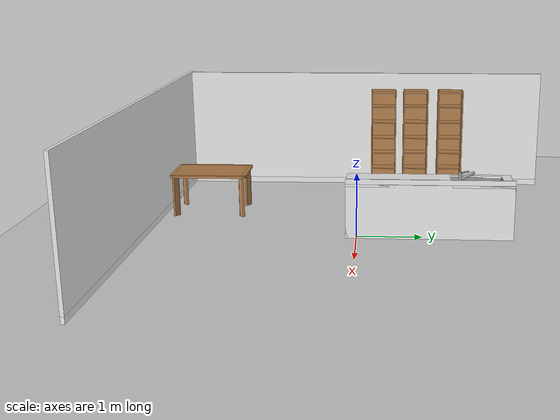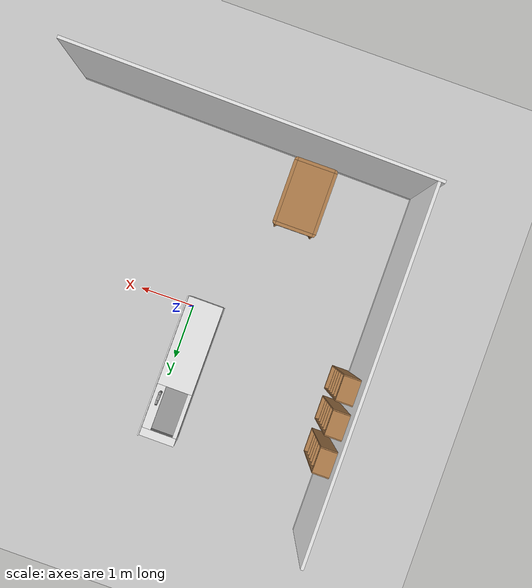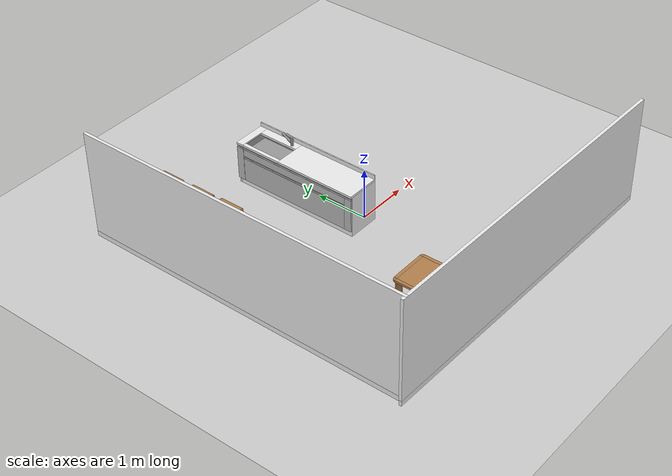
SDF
<sdf version="1.6">
 <world name="default">
  <physics name="default_physics" default="0" type="ode">
   <max_step_size>0.001</max_step_size>
   <real_time_factor>1</real_time_factor>
   <real_time_update_rate>1000</real_time_update_rate>
  </physics>
  <light name="sun" type="directional">
   <pose>0 0 10 0 -0 0</pose>
   <diffuse>0.8 0.8 0.8 1</diffuse>
   <specular>0.2 0.2 0.2 1</specular>
   <attenuation>
    <range>1000</range>
    <constant>0.9</constant>
    <linear>0.01</linear>
    <quadratic>0.001</quadratic>
   </attenuation>
   <direction>-0.5 0.1 -0.9</direction>
  </light>
  <model name="ground_plane">
   <static>1</static>
   <link name="link">
    <collision name="collision">
     <geometry><plane><normal>0 0 1</normal><size>100 100</size></plane></geometry>
     <surface><friction><ode><mu>100</mu><mu2>50</mu2></ode></friction></surface>
    </collision>
    <visual name="visual">
     <cast_shadows>0</cast_shadows>
     <geometry><plane><normal>0 0 1</normal><size>100 100</size></plane></geometry>
     <material>
      <script><uri>file://media/materials/scripts/gazebo.material</uri><name>Gazebo/Grey</name></script>
     </material>
    </visual>
   </link>
  </model>
  <gravity>0 0 -9.8</gravity>
  <magnetic_field>6e-06 2.3e-05 -4.2e-05</magnetic_field>
  <atmosphere type="adiabatic"/>
  <scene><ambient>0.4 0.4 0.4 1</ambient><background>0.7 0.7 0.7 1</background><shadows>1</shadows></scene>
  <spherical_coordinates>
   <surface_model>EARTH_WGS84</surface_model>
   <latitude_deg>0</latitude_deg>
   <longitude_deg>0</longitude_deg>
   <elevation>0</elevation>
   <heading_deg>0</heading_deg>
  </spherical_coordinates>
  <model name="full_wall_55_6475_2090">
   <link name="link">
    <inertial>
     <mass>50</mass>
     <inertia><ixx>1</ixx><ixy>0</ixy><ixz>0</ixz><iyy>1</iyy><iyz>0</iyz><izz>1</izz></inertia>
    </inertial>
    <visual name="bottom_frame">
     <pose>0 0 0.05 0 -0 0</pose>
     <geometry><box><size>0.055 6.475 0.1</size></box></geometry>
     <material>
      <script><uri>model://base_materials/color/scripts</uri><name>hsr_color/white</name></script>
     </material>
    </visual>
    <collision name="collision_bottom_frame">
     <pose>0 0 0.05 0 -0 0</pose>
     <geometry><box><size>0.055 6.475 0.1</size></box></geometry>
    </collision>
    <visual name="wall">
     <pose>0 0 1.095 0 -0 0</pose>
     <geometry><box><size>0.055 6.475 1.99</size></box></geometry>
     <material>
      <script>
       <uri>model://base_materials/wall/scripts</uri>
       <uri>model://base_materials/wall/textures</uri>
       <name>wall/white_noise</name>
      </script>
     </material>
    </visual>
    <collision name="collision_wall">
     <pose>0 0 1.095 0 -0 0</pose>
     <geometry><box><size>0.055 6.475 1.99</size></box></geometry>
    </collision>
    <velocity_decay><linear>0</linear><angular>0</angular></velocity_decay>
   </link>
   <static>1</static>
   <pose>-3.12846 0.010249 0 0 -0 0</pose>
  </model>
  <model name="full_wall_55_6475_2090_0">
   <link name="link">
    <inertial>
     <mass>50</mass>
     <inertia><ixx>1</ixx><ixy>0</ixy><ixz>0</ixz><iyy>1</iyy><iyz>0</iyz><izz>1</izz></inertia>
    </inertial>
    <visual name="bottom_frame">
     <pose>0 0 0.05 0 -0 0</pose>
     <geometry><box><size>0.055 6.475 0.1</size></box></geometry>
     <material>
      <script><uri>model://base_materials/color/scripts</uri><name>hsr_color/white</name></script>
     </material>
    </visual>
    <collision name="collision_bottom_frame">
     <pose>0 0 0.05 0 -0 0</pose>
     <geometry><box><size>0.055 6.475 0.1</size></box></geometry>
    </collision>
    <visual name="wall">
     <pose>0 0 1.095 0 -0 0</pose>
     <geometry><box><size>0.055 6.475 1.99</size></box></geometry>
     <material>
      <script>
       <uri>model://base_materials/wall/scripts</uri>
       <uri>model://base_materials/wall/textures</uri>
       <name>wall/white_noise</name>
      </script>
     </material>
    </visual>
    <collision name="collision_wall">
     <pose>0 0 1.095 0 -0 0</pose>
     <geometry><box><size>0.055 6.475 1.99</size></box></geometry>
    </collision>
    <velocity_decay><linear>0</linear><angular>0</angular></velocity_decay>
   </link>
   <static>1</static>
   <pose>0.014312 -3.25921 0 0 0 -1.58796</pose>
  </model>
  <model name="kitchen_table">
   <link name="link">
    <inertial>
     <mass>10</mass>
     <inertia><ixx>1</ixx><ixy>0</ixy><ixz>0</ixz><iyy>1</iyy><iyz>0</iyz><izz>1</izz></inertia>
    </inertial>
    <visual name="center_board">
     <pose>0 0 0.68 0 -0 0</pose>
     <geometry><box><size>0.68 1.13 0.04</size></box></geometry>
     <material>
      <script><uri>model://base_materials/wood/scripts/wood.material</uri><name>base_materials/wood</name></script>
     </material>
    </visual>
    <collision name="collision_center_board">
     <pose>0 0 0.68 0 -0 0</pose>
     <geometry><box><size>0.68 1.13 0.04</size></box></geometry>
    </collision>
    <visual name="front_board">
     <pose>0.37 0 0.68 0 -0 0</pose>
     <geometry><box><size>0.06 1.13 0.04</size></box></geometry>
     <material>
      <script><uri>model://base_materials/wood/scripts/wood.material</uri><name>base_materials/wood</name></script>
     </material>
    </visual>
    <collision name="collision_front_board">
     <pose>0.37 0 0.68 0 -0 0</pose>
     <geometry><box><size>0.06 1.13 0.04</size></box></geometry>
    </collision>
    <visual name="back_board">
     <pose>-0.37 0 0.68 0 -0 0</pose>
     <geometry><box><size>0.06 1.13 0.04</size></box></geometry>
     <material>
      <script><uri>model://base_materials/wood/scripts/wood.material</uri><name>base_materials/wood</name></script>
     </material>
    </visual>
    <collision name="collision_back_board">
     <pose>-0.37 0 0.68 0 -0 0</pose>
     <geometry><box><size>0.06 1.13 0.04</size></box></geometry>
    </collision>
    <visual name="right_board">
     <pose>0 0.595 0.68 0 -0 0</pose>
     <geometry><box><size>0.68 0.06 0.04</size></box></geometry>
     <material>
      <script><uri>model://base_materials/wood/scripts/wood.material</uri><name>base_materials/wood</name></script>
     </material>
    </visual>
    <collision name="collision_right_board">
     <pose>0 0.595 0.68 0 -0 0</pose>
     <geometry><box><size>0.68 0.06 0.04</size></box></geometry>
    </collision>
    <visual name="left_board">
     <pose>0 -0.595 0.68 0 -0 0</pose>
     <geometry><box><size>0.68 0.06 0.04</size></box></geometry>
     <material>
      <script><uri>model://base_materials/wood/scripts/wood.material</uri><name>base_materials/wood</name></script>
     </material>
    </visual>
    <collision name="collision_left_board">
     <pose>0 -0.595 0.68 0 -0 0</pose>
     <geometry><box><size>0.68 0.06 0.04</size></box></geometry>
    </collision>
    <visual name="front_right_corner_board">
     <pose>0.34 0.565 0.68 0 -0 0</pose>
     <geometry><cylinder><radius>0.06</radius><length>0.039</length></cylinder></geometry>
     <material>
      <script><uri>model://base_materials/wood/scripts/wood.material</uri><name>base_materials/wood</name></script>
     </material>
    </visual>
    <collision name="collision_front_right_corner_board">
     <pose>0.34 0.565 0.68 0 -0 0</pose>
     <geometry><cylinder><radius>0.06</radius><length>0.039</length></cylinder></geometry>
    </collision>
    <visual name="front_left_corner_board">
     <pose>0.34 -0.565 0.68 0 -0 0</pose>
     <geometry><cylinder><radius>0.06</radius><length>0.039</length></cylinder></geometry>
     <material>
      <script><uri>model://base_materials/wood/scripts/wood.material</uri><name>base_materials/wood</name></script>
     </material>
    </visual>
    <collision name="collision_front_left_corner_board">
     <pose>0.34 -0.565 0.68 0 -0 0</pose>
     <geometry><cylinder><radius>0.06</radius><length>0.039</length></cylinder></geometry>
    </collision>
    <visual name="front_back_right_corner_board">
     <pose>-0.34 0.565 0.68 0 -0 0</pose>
     <geometry><cylinder><radius>0.06</radius><length>0.039</length></cylinder></geometry>
     <material>
      <script><uri>model://base_materials/wood/scripts/wood.material</uri><name>base_materials/wood</name></script>
     </material>
    </visual>
    <collision name="collision_back_right_corner_board">
     <pose>-0.34 0.565 0.68 0 -0 0</pose>
     <geometry><cylinder><radius>0.06</radius><length>0.039</length></cylinder></geometry>
    </collision>
    <visual name="front_back_left_corner_board">
     <pose>-0.34 -0.565 0.68 0 -0 0</pose>
     <geometry><cylinder><radius>0.06</radius><length>0.039</length></cylinder></geometry>
     <material>
      <script><uri>model://base_materials/wood/scripts/wood.material</uri><name>base_materials/wood</name></script>
     </material>
    </visual>
    <collision name="collision_back_left_corner_board">
     <pose>-0.34 -0.565 0.68 0 -0 0</pose>
     <geometry><cylinder><radius>0.06</radius><length>0.039</length></cylinder></geometry>
    </collision>
    <visual name="front_left_corner_frame1">
     <pose>0.345858 -0.57086 0.33 0 -0 0</pose>
     <geometry><cylinder><radius>0.02</radius><length>0.66</length></cylinder></geometry>
     <material>
      <script><uri>model://base_materials/wood/scripts/wood.material</uri><name>base_materials/wood</name></script>
     </material>
    </visual>
    <collision name="collision_front_left_corner_frame1">
     <pose>0.345858 -0.57086 0.33 0 -0 0</pose>
     <geometry><cylinder><radius>0.02</radius><length>0.66</length></cylinder></geometry>
    </collision>
    <visual name="front_left_corner_frame2">
     <pose>0.317574 -0.54257 0.33 0 -0 0.7854</pose>
     <geometry><box><size>0.04 0.08 0.66</size></box></geometry>
     <material>
      <script><uri>model://base_materials/wood/scripts/wood.material</uri><name>base_materials/wood</name></script>
     </material>
    </visual>
    <collision name="collision_front_left_corner_frame2">
     <pose>0.317574 -0.54257 0.33 0 -0 0.7854</pose>
     <geometry><box><size>0.04 0.08 0.66</size></box></geometry>
    </collision>
    <visual name="front_left_corner_frame3">
     <pose>0.289289 -0.51429 0.33 0 -0 0</pose>
     <geometry><cylinder><radius>0.02</radius><length>0.66</length></cylinder></geometry>
     <material>
      <script><uri>model://base_materials/wood/scripts/wood.material</uri><name>base_materials/wood</name></script>
     </material>
    </visual>
    <collision name="collision_front_left_corner_frame3">
     <pose>0.289289 -0.51429 0.33 0 -0 0</pose>
     <geometry><cylinder><radius>0.02</radius><length>0.66</length></cylinder></geometry>
    </collision>
    <visual name="front_right_corner_frame1">
     <pose>0.345858 0.57086 0.33 0 -0 0</pose>
     <geometry><cylinder><radius>0.02</radius><length>0.66</length></cylinder></geometry>
     <material>
      <script><uri>model://base_materials/wood/scripts/wood.material</uri><name>base_materials/wood</name></script>
     </material>
    </visual>
    <collision name="collision_front_right_corner_frame1">
     <pose>0.345858 0.57086 0.33 0 -0 0</pose>
     <geometry><cylinder><radius>0.02</radius><length>0.66</length></cylinder></geometry>
    </collision>
    <visual name="front_right_corner_frame2">
     <pose>0.317574 0.54257 0.33 0 0 -0.7854</pose>
     <geometry><box><size>0.04 0.08 0.66</size></box></geometry>
     <material>
      <script><uri>model://base_materials/wood/scripts/wood.material</uri><name>base_materials/wood</name></script>
     </material>
    </visual>
    <collision name="collision_front_right_corner_frame2">
     <pose>0.317574 0.54257 0.33 0 0 -0.7854</pose>
     <geometry><box><size>0.04 0.08 0.66</size></box></geometry>
    </collision>
    <visual name="front_right_corner_frame3">
     <pose>0.289289 0.51429 0.33 0 -0 0</pose>
     <geometry><cylinder><radius>0.02</radius><length>0.66</length></cylinder></geometry>
     <material>
      <script><uri>model://base_materials/wood/scripts/wood.material</uri><name>base_materials/wood</name></script>
     </material>
    </visual>
    <collision name="collision_front_right_corner_frame3">
     <pose>0.289289 0.51429 0.33 0 -0 0</pose>
     <geometry><cylinder><radius>0.02</radius><length>0.66</length></cylinder></geometry>
    </collision>
    <visual name="back_left_corner_frame1">
     <pose>-0.345858 -0.57086 0.33 0 -0 0</pose>
     <geometry><cylinder><radius>0.02</radius><length>0.66</length></cylinder></geometry>
     <material>
      <script><uri>model://base_materials/wood/scripts/wood.material</uri><name>base_materials/wood</name></script>
     </material>
    </visual>
    <collision name="collision_back_left_corner_frame1">
     <pose>-0.345858 -0.57086 0.33 0 -0 0</pose>
     <geometry><cylinder><radius>0.02</radius><length>0.66</length></cylinder></geometry>
    </collision>
    <visual name="back_left_corner_frame2">
     <pose>-0.317574 -0.54257 0.33 0 0 -0.7854</pose>
     <geometry><box><size>0.04 0.08 0.66</size></box></geometry>
     <material>
      <script><uri>model://base_materials/wood/scripts/wood.material</uri><name>base_materials/wood</name></script>
     </material>
    </visual>
    <collision name="collision_back_left_corner_frame2">
     <pose>-0.317574 -0.54257 0.33 0 0 -0.7854</pose>
     <geometry><box><size>0.04 0.08 0.66</size></box></geometry>
    </collision>
    <visual name="back_left_corner_frame3">
     <pose>-0.289289 -0.51429 0.33 0 -0 0</pose>
     <geometry><cylinder><radius>0.02</radius><length>0.66</length></cylinder></geometry>
     <material>
      <script><uri>model://base_materials/wood/scripts/wood.material</uri><name>base_materials/wood</name></script>
     </material>
    </visual>
    <collision name="collision_back_left_corner_frame3">
     <pose>-0.289289 -0.51429 0.33 0 -0 0</pose>
     <geometry><cylinder><radius>0.02</radius><length>0.66</length></cylinder></geometry>
    </collision>
    <visual name="back_right_corner_frame1">
     <pose>-0.345858 0.57086 0.33 0 -0 0</pose>
     <geometry><cylinder><radius>0.02</radius><length>0.66</length></cylinder></geometry>
     <material>
      <script><uri>model://base_materials/wood/scripts/wood.material</uri><name>base_materials/wood</name></script>
     </material>
    </visual>
    <collision name="collision_back_right_corner_frame1">
     <pose>-0.345858 0.57086 0.33 0 -0 0</pose>
     <geometry><cylinder><radius>0.02</radius><length>0.66</length></cylinder></geometry>
    </collision>
    <visual name="back_right_corner_frame2">
     <pose>-0.317574 0.54257 0.33 0 -0 0.7854</pose>
     <geometry><box><size>0.04 0.08 0.66</size></box></geometry>
     <material>
      <script><uri>model://base_materials/wood/scripts/wood.material</uri><name>base_materials/wood</name></script>
     </material>
    </visual>
    <collision name="collision_back_right_corner_frame2">
     <pose>-0.317574 0.54257 0.33 0 -0 0.7854</pose>
     <geometry><box><size>0.04 0.08 0.66</size></box></geometry>
    </collision>
    <visual name="back_right_corner_frame3">
     <pose>-0.289289 0.51429 0.33 0 -0 0</pose>
     <geometry><cylinder><radius>0.02</radius><length>0.66</length></cylinder></geometry>
     <material>
      <script><uri>model://base_materials/wood/scripts/wood.material</uri><name>base_materials/wood</name></script>
     </material>
    </visual>
    <collision name="collision_back_right_corner_frame3">
     <pose>-0.289289 0.51429 0.33 0 -0 0</pose>
     <geometry><cylinder><radius>0.02</radius><length>0.66</length></cylinder></geometry>
    </collision>
    <velocity_decay><linear>0</linear><angular>0</angular></velocity_decay>
   </link>
   <static>1</static>
   <pose>-1.26108 -2.47271 0 0 -0 0</pose>
  </model>
  <model name="high_shelf">
   <link name="link">
    <inertial>
     <mass>5</mass>
     <inertia><ixx>1</ixx><ixy>0</ixy><ixz>0</ixz><iyy>1</iyy><iyz>0</iyz><izz>1</izz></inertia>
    </inertial>
    <visual name="left_board">
     <pose>-0.1475 0.009 0.898 0 -0 0</pose>
     <geometry><box><size>0.295 0.018 1.796</size></box></geometry>
     <material>
      <script>
       <uri>model://base_materials/wood/scripts</uri>
       <uri>model://base_materials/wood/textures</uri>
       <name>base_materials/light_wood</name>
      </script>
     </material>
    </visual>
    <collision name="collision_left_board">
     <pose>-0.1475 0.009 0.898 0 -0 0</pose>
     <geometry><box><size>0.295 0.018 1.796</size></box></geometry>
    </collision>
    <visual name="right_board">
     <pose>-0.1475 0.441 0.898 0 -0 0</pose>
     <geometry><box><size>0.295 0.018 1.796</size></box></geometry>
     <material>
      <script>
       <uri>model://base_materials/wood/scripts</uri>
       <uri>model://base_materials/wood/textures</uri>
       <name>base_materials/light_wood</name>
      </script>
     </material>
    </visual>
    <collision name="collision_right_board">
     <pose>-0.1475 0.441 0.898 0 -0 0</pose>
     <geometry><box><size>0.295 0.018 1.796</size></box></geometry>
    </collision>
    <visual name="top_board">
     <pose>-0.1475 0.225 1.7825 0 -0 0</pose>
     <geometry><box><size>0.295 0.414 0.035</size></box></geometry>
     <material>
      <script>
       <uri>model://base_materials/wood/scripts</uri>
       <uri>model://base_materials/wood/textures</uri>
       <name>base_materials/light_wood</name>
      </script>
     </material>
    </visual>
    <collision name="collision_top_board">
     <pose>-0.1475 0.225 1.7825 0 -0 0</pose>
     <geometry><box><size>0.295 0.414 0.035</size></box></geometry>
    </collision>
    <visual name="1st_shelf">
     <pose>-0.162 0.225 1.51 0 -0 0</pose>
     <geometry><box><size>0.266 0.414 0.018</size></box></geometry>
     <material>
      <script>
       <uri>model://base_materials/wood/scripts</uri>
       <uri>model://base_materials/wood/textures</uri>
       <name>base_materials/light_wood</name>
      </script>
     </material>
    </visual>
    <collision name="collision_1st_shelf">
     <pose>-0.162 0.225 1.51 0 -0 0</pose>
     <geometry><box><size>0.266 0.414 0.018</size></box></geometry>
    </collision>
    <visual name="2nd_shelf">
     <pose>-0.162 0.225 1.22 0 -0 0</pose>
     <geometry><box><size>0.266 0.414 0.018</size></box></geometry>
     <material>
      <script>
       <uri>model://base_materials/wood/scripts</uri>
       <uri>model://base_materials/wood/textures</uri>
       <name>base_materials/light_wood</name>
      </script>
     </material>
    </visual>
    <collision name="collision_2nd_shelf">
     <pose>-0.162 0.225 1.22 0 -0 0</pose>
     <geometry><box><size>0.266 0.414 0.018</size></box></geometry>
    </collision>
    <visual name="3rd_shelf">
     <pose>-0.162 0.225 0.93 0 -0 0</pose>
     <geometry><box><size>0.266 0.414 0.018</size></box></geometry>
     <material>
      <script>
       <uri>model://base_materials/wood/scripts</uri>
       <uri>model://base_materials/wood/textures</uri>
       <name>base_materials/light_wood</name>
      </script>
     </material>
    </visual>
    <collision name="collision_3rd_shelf">
     <pose>-0.162 0.225 0.93 0 -0 0</pose>
     <geometry><box><size>0.266 0.414 0.018</size></box></geometry>
    </collision>
    <visual name="4th_shelf">
     <pose>-0.162 0.225 0.65 0 -0 0</pose>
     <geometry><box><size>0.266 0.414 0.018</size></box></geometry>
     <material>
      <script>
       <uri>model://base_materials/wood/scripts</uri>
       <uri>model://base_materials/wood/textures</uri>
       <name>base_materials/light_wood</name>
      </script>
     </material>
    </visual>
    <collision name="collision_4th_shelf">
     <pose>-0.162 0.225 0.65 0 -0 0</pose>
     <geometry><box><size>0.266 0.414 0.018</size></box></geometry>
    </collision>
    <visual name="5th_shelf">
     <pose>-0.162 0.225 0.36 0 -0 0</pose>
     <geometry><box><size>0.266 0.414 0.018</size></box></geometry>
     <material>
      <script>
       <uri>model://base_materials/wood/scripts</uri>
       <uri>model://base_materials/wood/textures</uri>
       <name>base_materials/light_wood</name>
      </script>
     </material>
    </visual>
    <collision name="collision_5th_shelf">
     <pose>-0.162 0.225 0.36 0 -0 0</pose>
     <geometry><box><size>0.266 0.414 0.018</size></box></geometry>
    </collision>
    <visual name="bottom_board">
     <pose>-0.1475 0.225 0.035 0 -0 0</pose>
     <geometry><box><size>0.295 0.414 0.07</size></box></geometry>
     <material>
      <script>
       <uri>model://base_materials/wood/scripts</uri>
       <uri>model://base_materials/wood/textures</uri>
       <name>base_materials/light_wood</name>
      </script>
     </material>
    </visual>
    <collision name="collision_bottom_board">
     <pose>-0.1475 0.225 0.035 0 -0 0</pose>
     <geometry><box><size>0.295 0.414 0.07</size></box></geometry>
    </collision>
    <visual name="back_board">
     <pose>-0.286 0.225 0.898 0 -0 0</pose>
     <geometry><box><size>0.018 0.414 1.796</size></box></geometry>
     <material>
      <script>
       <uri>model://base_materials/wood/scripts</uri>
       <uri>model://base_materials/wood/textures</uri>
       <name>base_materials/light_wood</name>
      </script>
     </material>
    </visual>
    <collision name="collision_back_board">
     <pose>-0.286 0.225 0.898 0 -0 0</pose>
     <geometry><box><size>0.018 0.414 1.796</size></box></geometry>
    </collision>
    <velocity_decay><linear>0</linear><angular>0</angular></velocity_decay>
   </link>
   <static>1</static>
   <pose>-2.77877 0.165829 0 0 -0 0</pose>
  </model>
  <model name="high_shelf_0">
   <link name="link">
    <inertial>
     <mass>5</mass>
     <inertia><ixx>1</ixx><ixy>0</ixy><ixz>0</ixz><iyy>1</iyy><iyz>0</iyz><izz>1</izz></inertia>
    </inertial>
    <visual name="left_board">
     <pose>-0.1475 0.009 0.898 0 -0 0</pose>
     <geometry><box><size>0.295 0.018 1.796</size></box></geometry>
     <material>
      <script>
       <uri>model://base_materials/wood/scripts</uri>
       <uri>model://base_materials/wood/textures</uri>
       <name>base_materials/light_wood</name>
      </script>
     </material>
    </visual>
    <collision name="collision_left_board">
     <pose>-0.1475 0.009 0.898 0 -0 0</pose>
     <geometry><box><size>0.295 0.018 1.796</size></box></geometry>
    </collision>
    <visual name="right_board">
     <pose>-0.1475 0.441 0.898 0 -0 0</pose>
     <geometry><box><size>0.295 0.018 1.796</size></box></geometry>
     <material>
      <script>
       <uri>model://base_materials/wood/scripts</uri>
       <uri>model://base_materials/wood/textures</uri>
       <name>base_materials/light_wood</name>
      </script>
     </material>
    </visual>
    <collision name="collision_right_board">
     <pose>-0.1475 0.441 0.898 0 -0 0</pose>
     <geometry><box><size>0.295 0.018 1.796</size></box></geometry>
    </collision>
    <visual name="top_board">
     <pose>-0.1475 0.225 1.7825 0 -0 0</pose>
     <geometry><box><size>0.295 0.414 0.035</size></box></geometry>
     <material>
      <script>
       <uri>model://base_materials/wood/scripts</uri>
       <uri>model://base_materials/wood/textures</uri>
       <name>base_materials/light_wood</name>
      </script>
     </material>
    </visual>
    <collision name="collision_top_board">
     <pose>-0.1475 0.225 1.7825 0 -0 0</pose>
     <geometry><box><size>0.295 0.414 0.035</size></box></geometry>
    </collision>
    <visual name="1st_shelf">
     <pose>-0.162 0.225 1.51 0 -0 0</pose>
     <geometry><box><size>0.266 0.414 0.018</size></box></geometry>
     <material>
      <script>
       <uri>model://base_materials/wood/scripts</uri>
       <uri>model://base_materials/wood/textures</uri>
       <name>base_materials/light_wood</name>
      </script>
     </material>
    </visual>
    <collision name="collision_1st_shelf">
     <pose>-0.162 0.225 1.51 0 -0 0</pose>
     <geometry><box><size>0.266 0.414 0.018</size></box></geometry>
    </collision>
    <visual name="2nd_shelf">
     <pose>-0.162 0.225 1.22 0 -0 0</pose>
     <geometry><box><size>0.266 0.414 0.018</size></box></geometry>
     <material>
      <script>
       <uri>model://base_materials/wood/scripts</uri>
       <uri>model://base_materials/wood/textures</uri>
       <name>base_materials/light_wood</name>
      </script>
     </material>
    </visual>
    <collision name="collision_2nd_shelf">
     <pose>-0.162 0.225 1.22 0 -0 0</pose>
     <geometry><box><size>0.266 0.414 0.018</size></box></geometry>
    </collision>
    <visual name="3rd_shelf">
     <pose>-0.162 0.225 0.93 0 -0 0</pose>
     <geometry><box><size>0.266 0.414 0.018</size></box></geometry>
     <material>
      <script>
       <uri>model://base_materials/wood/scripts</uri>
       <uri>model://base_materials/wood/textures</uri>
       <name>base_materials/light_wood</name>
      </script>
     </material>
    </visual>
    <collision name="collision_3rd_shelf">
     <pose>-0.162 0.225 0.93 0 -0 0</pose>
     <geometry><box><size>0.266 0.414 0.018</size></box></geometry>
    </collision>
    <visual name="4th_shelf">
     <pose>-0.162 0.225 0.65 0 -0 0</pose>
     <geometry><box><size>0.266 0.414 0.018</size></box></geometry>
     <material>
      <script>
       <uri>model://base_materials/wood/scripts</uri>
       <uri>model://base_materials/wood/textures</uri>
       <name>base_materials/light_wood</name>
      </script>
     </material>
    </visual>
    <collision name="collision_4th_shelf">
     <pose>-0.162 0.225 0.65 0 -0 0</pose>
     <geometry><box><size>0.266 0.414 0.018</size></box></geometry>
    </collision>
    <visual name="5th_shelf">
     <pose>-0.162 0.225 0.36 0 -0 0</pose>
     <geometry><box><size>0.266 0.414 0.018</size></box></geometry>
     <material>
      <script>
       <uri>model://base_materials/wood/scripts</uri>
       <uri>model://base_materials/wood/textures</uri>
       <name>base_materials/light_wood</name>
      </script>
     </material>
    </visual>
    <collision name="collision_5th_shelf">
     <pose>-0.162 0.225 0.36 0 -0 0</pose>
     <geometry><box><size>0.266 0.414 0.018</size></box></geometry>
    </collision>
    <visual name="bottom_board">
     <pose>-0.1475 0.225 0.035 0 -0 0</pose>
     <geometry><box><size>0.295 0.414 0.07</size></box></geometry>
     <material>
      <script>
       <uri>model://base_materials/wood/scripts</uri>
       <uri>model://base_materials/wood/textures</uri>
       <name>base_materials/light_wood</name>
      </script>
     </material>
    </visual>
    <collision name="collision_bottom_board">
     <pose>-0.1475 0.225 0.035 0 -0 0</pose>
     <geometry><box><size>0.295 0.414 0.07</size></box></geometry>
    </collision>
    <visual name="back_board">
     <pose>-0.286 0.225 0.898 0 -0 0</pose>
     <geometry><box><size>0.018 0.414 1.796</size></box></geometry>
     <material>
      <script>
       <uri>model://base_materials/wood/scripts</uri>
       <uri>model://base_materials/wood/textures</uri>
       <name>base_materials/light_wood</name>
      </script>
     </material>
    </visual>
    <collision name="collision_back_board">
     <pose>-0.286 0.225 0.898 0 -0 0</pose>
     <geometry><box><size>0.018 0.414 1.796</size></box></geometry>
    </collision>
    <velocity_decay><linear>0</linear><angular>0</angular></velocity_decay>
   </link>
   <static>1</static>
   <pose>-2.79896 0.747288 0 0 -0 0</pose>
  </model>
  <model name="high_shelf_1">
   <link name="link">
    <inertial>
     <mass>5</mass>
     <inertia><ixx>1</ixx><ixy>0</ixy><ixz>0</ixz><iyy>1</iyy><iyz>0</iyz><izz>1</izz></inertia>
    </inertial>
    <visual name="left_board">
     <pose>-0.1475 0.009 0.898 0 -0 0</pose>
     <geometry><box><size>0.295 0.018 1.796</size></box></geometry>
     <material>
      <script>
       <uri>model://base_materials/wood/scripts</uri>
       <uri>model://base_materials/wood/textures</uri>
       <name>base_materials/light_wood</name>
      </script>
     </material>
    </visual>
    <collision name="collision_left_board">
     <pose>-0.1475 0.009 0.898 0 -0 0</pose>
     <geometry><box><size>0.295 0.018 1.796</size></box></geometry>
    </collision>
    <visual name="right_board">
     <pose>-0.1475 0.441 0.898 0 -0 0</pose>
     <geometry><box><size>0.295 0.018 1.796</size></box></geometry>
     <material>
      <script>
       <uri>model://base_materials/wood/scripts</uri>
       <uri>model://base_materials/wood/textures</uri>
       <name>base_materials/light_wood</name>
      </script>
     </material>
    </visual>
    <collision name="collision_right_board">
     <pose>-0.1475 0.441 0.898 0 -0 0</pose>
     <geometry><box><size>0.295 0.018 1.796</size></box></geometry>
    </collision>
    <visual name="top_board">
     <pose>-0.1475 0.225 1.7825 0 -0 0</pose>
     <geometry><box><size>0.295 0.414 0.035</size></box></geometry>
     <material>
      <script>
       <uri>model://base_materials/wood/scripts</uri>
       <uri>model://base_materials/wood/textures</uri>
       <name>base_materials/light_wood</name>
      </script>
     </material>
    </visual>
    <collision name="collision_top_board">
     <pose>-0.1475 0.225 1.7825 0 -0 0</pose>
     <geometry><box><size>0.295 0.414 0.035</size></box></geometry>
    </collision>
    <visual name="1st_shelf">
     <pose>-0.162 0.225 1.51 0 -0 0</pose>
     <geometry><box><size>0.266 0.414 0.018</size></box></geometry>
     <material>
      <script>
       <uri>model://base_materials/wood/scripts</uri>
       <uri>model://base_materials/wood/textures</uri>
       <name>base_materials/light_wood</name>
      </script>
     </material>
    </visual>
    <collision name="collision_1st_shelf">
     <pose>-0.162 0.225 1.51 0 -0 0</pose>
     <geometry><box><size>0.266 0.414 0.018</size></box></geometry>
    </collision>
    <visual name="2nd_shelf">
     <pose>-0.162 0.225 1.22 0 -0 0</pose>
     <geometry><box><size>0.266 0.414 0.018</size></box></geometry>
     <material>
      <script>
       <uri>model://base_materials/wood/scripts</uri>
       <uri>model://base_materials/wood/textures</uri>
       <name>base_materials/light_wood</name>
      </script>
     </material>
    </visual>
    <collision name="collision_2nd_shelf">
     <pose>-0.162 0.225 1.22 0 -0 0</pose>
     <geometry><box><size>0.266 0.414 0.018</size></box></geometry>
    </collision>
    <visual name="3rd_shelf">
     <pose>-0.162 0.225 0.93 0 -0 0</pose>
     <geometry><box><size>0.266 0.414 0.018</size></box></geometry>
     <material>
      <script>
       <uri>model://base_materials/wood/scripts</uri>
       <uri>model://base_materials/wood/textures</uri>
       <name>base_materials/light_wood</name>
      </script>
     </material>
    </visual>
    <collision name="collision_3rd_shelf">
     <pose>-0.162 0.225 0.93 0 -0 0</pose>
     <geometry><box><size>0.266 0.414 0.018</size></box></geometry>
    </collision>
    <visual name="4th_shelf">
     <pose>-0.162 0.225 0.65 0 -0 0</pose>
     <geometry><box><size>0.266 0.414 0.018</size></box></geometry>
     <material>
      <script>
       <uri>model://base_materials/wood/scripts</uri>
       <uri>model://base_materials/wood/textures</uri>
       <name>base_materials/light_wood</name>
      </script>
     </material>
    </visual>
    <collision name="collision_4th_shelf">
     <pose>-0.162 0.225 0.65 0 -0 0</pose>
     <geometry><box><size>0.266 0.414 0.018</size></box></geometry>
    </collision>
    <visual name="5th_shelf">
     <pose>-0.162 0.225 0.36 0 -0 0</pose>
     <geometry><box><size>0.266 0.414 0.018</size></box></geometry>
     <material>
      <script>
       <uri>model://base_materials/wood/scripts</uri>
       <uri>model://base_materials/wood/textures</uri>
       <name>base_materials/light_wood</name>
      </script>
     </material>
    </visual>
    <collision name="collision_5th_shelf">
     <pose>-0.162 0.225 0.36 0 -0 0</pose>
     <geometry><box><size>0.266 0.414 0.018</size></box></geometry>
    </collision>
    <visual name="bottom_board">
     <pose>-0.1475 0.225 0.035 0 -0 0</pose>
     <geometry><box><size>0.295 0.414 0.07</size></box></geometry>
     <material>
      <script>
       <uri>model://base_materials/wood/scripts</uri>
       <uri>model://base_materials/wood/textures</uri>
       <name>base_materials/light_wood</name>
      </script>
     </material>
    </visual>
    <collision name="collision_bottom_board">
     <pose>-0.1475 0.225 0.035 0 -0 0</pose>
     <geometry><box><size>0.295 0.414 0.07</size></box></geometry>
    </collision>
    <visual name="back_board">
     <pose>-0.286 0.225 0.898 0 -0 0</pose>
     <geometry><box><size>0.018 0.414 1.796</size></box></geometry>
     <material>
      <script>
       <uri>model://base_materials/wood/scripts</uri>
       <uri>model://base_materials/wood/textures</uri>
       <name>base_materials/light_wood</name>
      </script>
     </material>
    </visual>
    <collision name="collision_back_board">
     <pose>-0.286 0.225 0.898 0 -0 0</pose>
     <geometry><box><size>0.018 0.414 1.796</size></box></geometry>
    </collision>
    <velocity_decay><linear>0</linear><angular>0</angular></velocity_decay>
   </link>
   <static>1</static>
   <pose>-2.81088 1.37809 0 0 -0 0</pose>
  </model>
  <model name="sink">
   <link name="link">
    <inertial>
     <mass>10</mass>
     <inertia><ixx>1</ixx><ixy>0</ixy><ixz>0</ixz><iyy>1</iyy><iyz>0</iyz><izz>1</izz></inertia>
    </inertial>
    <visual name="faucet1">
     <pose>-0.52 0.82 0.94 0 -0 0</pose>
     <geometry><cylinder><radius>0.027</radius><length>0.18</length></cylinder></geometry>
     <material>
      <script><uri>model://base_materials/color/scripts</uri><name>hsr_color/grey</name></script>
     </material>
    </visual>
    <collision name="collision_faucet1">
     <pose>-0.52 0.82 0.94 0 -0 0</pose>
     <geometry><cylinder><radius>0.027</radius><length>0.18</length></cylinder></geometry>
    </collision>
    <visual name="faucet2">
     <pose>-0.52 0.72 0.97 1.047 -0 0</pose>
     <geometry><cylinder><radius>0.024</radius><length>0.24</length></cylinder></geometry>
     <material>
      <script><uri>model://base_materials/color/scripts</uri><name>hsr_color/grey</name></script>
     </material>
    </visual>
    <collision name="collision_faucet2">
     <pose>-0.52 0.72 0.97 1.047 -0 0</pose>
     <geometry><cylinder><radius>0.024</radius><length>0.24</length></cylinder></geometry>
    </collision>
    <visual name="faucet3">
     <pose>-0.52 0.63 1 0 -0 0</pose>
     <geometry><cylinder><radius>0.015</radius><length>0.04</length></cylinder></geometry>
     <material>
      <script><uri>model://base_materials/color/scripts</uri><name>hsr_color/grey</name></script>
     </material>
    </visual>
    <collision name="collision_faucet3">
     <pose>-0.52 0.63 1 0 -0 0</pose>
     <geometry><cylinder><radius>0.015</radius><length>0.04</length></cylinder></geometry>
    </collision>
    <visual name="faucet_handle">
     <pose>-0.52 0.75 1.03 1.309 -0 0</pose>
     <geometry><box><size>0.048 0.01 0.11</size></box></geometry>
     <material>
      <script><uri>model://base_materials/color/scripts</uri><name>hsr_color/grey</name></script>
     </material>
    </visual>
    <collision name="collision_faucet_handle">
     <pose>-0.52 0.75 1.03 1.309 -0 0</pose>
     <geometry><box><size>0.048 0.01 0.11</size></box></geometry>
    </collision>
    <visual name="back_bucket">
     <pose>-0.57 0.545 0.74 0 -0 0</pose>
     <geometry><box><size>0.02 0.8 0.18</size></box></geometry>
     <material>
      <script><uri>model://base_materials/color/scripts</uri><name>hsr_color/grey</name></script>
     </material>
    </visual>
    <collision name="collision_back_bucket">
     <pose>-0.57 0.545 0.74 0 -0 0</pose>
     <geometry><box><size>0.02 0.8 0.18</size></box></geometry>
    </collision>
    <visual name="front_bucket">
     <pose>-0.06 0.545 0.74 0 -0 0</pose>
     <geometry><box><size>0.02 0.8 0.18</size></box></geometry>
     <material>
      <script><uri>model://base_materials/color/scripts</uri><name>hsr_color/grey</name></script>
     </material>
    </visual>
    <collision name="collision_fromt_bucket">
     <pose>-0.06 0.545 0.74 0 -0 0</pose>
     <geometry><box><size>0.02 0.8 0.18</size></box></geometry>
    </collision>
    <visual name="left_bucket">
     <pose>-0.32 0.14 0.74 0 -0 0</pose>
     <geometry><box><size>0.5 0.02 0.18</size></box></geometry>
     <material>
      <script><uri>model://base_materials/color/scripts</uri><name>hsr_color/grey</name></script>
     </material>
    </visual>
    <collision name="collision_left_bucket">
     <pose>-0.32 0.14 0.74 0 -0 0</pose>
     <geometry><box><size>0.5 0.02 0.18</size></box></geometry>
    </collision>
    <visual name="right_bucket">
     <pose>-0.32 0.96 0.74 0 -0 0</pose>
     <geometry><box><size>0.5 0.02 0.18</size></box></geometry>
     <material>
      <script><uri>model://base_materials/color/scripts</uri><name>hsr_color/grey</name></script>
     </material>
    </visual>
    <collision name="collision_right_bucket">
     <pose>-0.32 0.96 0.74 0 -0 0</pose>
     <geometry><box><size>0.5 0.02 0.18</size></box></geometry>
    </collision>
    <visual name="bottom_bucket">
     <pose>-0.33 0.555 0.695 0 -0 0</pose>
     <geometry><box><size>0.52 0.82 0.02</size></box></geometry>
     <material>
      <script><uri>model://base_materials/color/scripts</uri><name>hsr_color/grey</name></script>
     </material>
    </visual>
    <collision name="collision_bottom_bucket">
     <pose>-0.33 0.555 0.695 0 -0 0</pose>
     <geometry><box><size>0.52 0.82 0.02</size></box></geometry>
    </collision>
    <visual name="front_board">
     <pose>-0.04 1.275 0.425 0 -0 0</pose>
     <geometry><box><size>0.02 2.549 0.85</size></box></geometry>
     <material>
      <script><uri>model://base_materials/color/scripts</uri><name>hsr_color/white</name></script>
     </material>
    </visual>
    <collision name="collision_front_board">
     <pose>-0.04 1.275 0.425 0 -0 0</pose>
     <geometry><box><size>0.02 2.549 0.85</size></box></geometry>
    </collision>
    <visual name="back_board1">
     <pose>-0.625 1.275 0.425 0 -0 0</pose>
     <geometry><box><size>0.05 2.549 0.85</size></box></geometry>
     <material>
      <script><uri>model://base_materials/color/scripts</uri><name>hsr_color/white</name></script>
     </material>
    </visual>
    <collision name="collision_back_board1">
     <pose>-0.625 1.275 0.425 0 -0 0</pose>
     <geometry><box><size>0.05 2.549 0.85</size></box></geometry>
    </collision>
    <visual name="left_board">
     <pose>-0.34 0.025 0.425 0 -0 0</pose>
     <geometry><box><size>0.62 0.05 0.85</size></box></geometry>
     <material>
      <script><uri>model://base_materials/color/scripts</uri><name>hsr_color/white</name></script>
     </material>
    </visual>
    <collision name="collision_left_board">
     <pose>-0.34 0.025 0.425 0 -0 0</pose>
     <geometry><box><size>0.62 0.05 0.85</size></box></geometry>
    </collision>
    <visual name="right_board">
     <pose>-0.34 2.525 0.425 0 -0 0</pose>
     <geometry><box><size>0.62 0.05 0.85</size></box></geometry>
     <material>
      <script><uri>model://base_materials/color/scripts</uri><name>hsr_color/white</name></script>
     </material>
    </visual>
    <collision name="collision_right_board">
     <pose>-0.34 2.525 0.425 0 -0 0</pose>
     <geometry><box><size>0.62 0.05 0.85</size></box></geometry>
    </collision>
    <visual name="top_left_board">
     <pose>-0.325 0.0725 0.835 0 -0 0</pose>
     <geometry><box><size>0.65 0.146 0.04</size></box></geometry>
     <material>
      <script><uri>model://base_materials/color/scripts</uri><name>hsr_color/white</name></script>
     </material>
    </visual>
    <collision name="collision_top_left_board">
     <pose>-0.325 0.0725 0.835 0 -0 0</pose>
     <geometry><box><size>0.65 0.146 0.04</size></box></geometry>
    </collision>
    <visual name="top_right_board">
     <pose>-0.325 1.7475 0.835 0 -0 0</pose>
     <geometry><box><size>0.65 1.606 0.04</size></box></geometry>
     <material>
      <script><uri>model://base_materials/color/scripts</uri><name>hsr_color/white</name></script>
     </material>
    </visual>
    <collision name="collision_top_right_board">
     <pose>-0.325 1.7475 0.835 0 -0 0</pose>
     <geometry><box><size>0.65 1.606 0.04</size></box></geometry>
    </collision>
    <visual name="top_front_board">
     <pose>-0.035 0.545 0.835 0 -0 0</pose>
     <geometry><box><size>0.07 0.8 0.04</size></box></geometry>
     <material>
      <script><uri>model://base_materials/color/scripts</uri><name>hsr_color/white</name></script>
     </material>
    </visual>
    <collision name="collision_top_front_board">
     <pose>-0.035 0.545 0.835 0 -0 0</pose>
     <geometry><box><size>0.07 0.8 0.04</size></box></geometry>
    </collision>
    <visual name="top_back_board">
     <pose>-0.56 0.545 0.835 0 -0 0</pose>
     <geometry><box><size>0.18 0.8 0.04</size></box></geometry>
     <material>
      <script><uri>model://base_materials/color/scripts</uri><name>hsr_color/white</name></script>
     </material>
    </visual>
    <collision name="collision_top_back_board">
     <pose>-0.56 0.545 0.835 0 -0 0</pose>
     <geometry><box><size>0.18 0.8 0.04</size></box></geometry>
    </collision>
    <visual name="back_board2">
     <pose>-0.64 1.275 0.895 0 -0 0</pose>
     <geometry><box><size>0.02 2.55 0.08</size></box></geometry>
     <material>
      <script><uri>model://base_materials/color/scripts</uri><name>hsr_color/white</name></script>
     </material>
    </visual>
    <collision name="collision_back_board2">
     <pose>-0.64 1.275 0.895 0 -0 0</pose>
     <geometry><box><size>0.02 2.55 0.08</size></box></geometry>
    </collision>
    <visual name="handle1_1">
     <pose>-0.015 1.275 0.81 0 -0 0</pose>
     <geometry><box><size>0.03 2.55 0.005</size></box></geometry>
     <material>
      <script><uri>model://base_materials/color/scripts</uri><name>hsr_color/grey</name></script>
     </material>
    </visual>
    <collision name="collision_handle1_1">
     <pose>-0.015 1.275 0.81 0 -0 0</pose>
     <geometry><box><size>0.03 2.55 0.005</size></box></geometry>
    </collision>
    <visual name="handle1_2">
     <pose>-0.029 1.275 0.7925 0 -0 0</pose>
     <geometry><box><size>0.005 2.55 0.04</size></box></geometry>
     <material>
      <script><uri>model://base_materials/color/scripts</uri><name>hsr_color/grey</name></script>
     </material>
    </visual>
    <collision name="collision_handle1_2">
     <pose>-0.029 1.275 0.7925 0 -0 0</pose>
     <geometry><box><size>0.005 2.55 0.04</size></box></geometry>
    </collision>
    <visual name="handle1_3">
     <pose>-0.015 1.275 0.77 0 -0 0</pose>
     <geometry><box><size>0.03 2.55 0.005</size></box></geometry>
     <material>
      <script><uri>model://base_materials/color/scripts</uri><name>hsr_color/grey</name></script>
     </material>
    </visual>
    <collision name="collision_handle1_3">
     <pose>-0.015 1.275 0.77 0 -0 0</pose>
     <geometry><box><size>0.03 2.55 0.005</size></box></geometry>
    </collision>
    <visual name="front_left_drawer">
     <pose>-0.015 0.0725 0.44 0 -0 0</pose>
     <geometry><box><size>0.03 0.145 0.66</size></box></geometry>
     <material>
      <script><uri>model://sink/scripts</uri><uri>model://sink/textures</uri><name>sink/001</name></script>
     </material>
    </visual>
    <collision name="collision_left_drawer">
     <pose>-0.015 0.0725 0.44 0 -0 0</pose>
     <geometry><box><size>0.03 0.145 0.66</size></box></geometry>
    </collision>
    <visual name="front_right_drawer">
     <pose>-0.015 2.4725 0.44 0 -0 0</pose>
     <geometry><box><size>0.03 0.145 0.66</size></box></geometry>
     <material>
      <script><uri>model://sink/scripts</uri><uri>model://sink/textures</uri><name>sink/001</name></script>
     </material>
    </visual>
    <collision name="collision_right_drawer">
     <pose>-0.015 2.4725 0.44 0 -0 0</pose>
     <geometry><box><size>0.03 0.145 0.66</size></box></geometry>
    </collision>
    <visual name="front_top_drawer">
     <pose>-0.015 1.275 0.6975 0 -0 0</pose>
     <geometry><box><size>0.03 2.25 0.145</size></box></geometry>
     <material>
      <script><uri>model://sink/scripts</uri><uri>model://sink/textures</uri><name>sink/001</name></script>
     </material>
    </visual>
    <collision name="collision_top_drawer">
     <pose>-0.015 1.275 0.6975 0 -0 0</pose>
     <geometry><box><size>0.03 2.25 0.145</size></box></geometry>
    </collision>
    <visual name="handle2_1">
     <pose>-0.015 1.275 0.62 0 -0 0</pose>
     <geometry><box><size>0.03 2.25 0.005</size></box></geometry>
     <material>
      <script><uri>model://base_materials/color/scripts</uri><name>hsr_color/grey</name></script>
     </material>
    </visual>
    <collision name="collision_handle2_1">
     <pose>-0.015 1.275 0.62 0 -0 0</pose>
     <geometry><box><size>0.03 2.25 0.005</size></box></geometry>
    </collision>
    <visual name="handle2_2">
     <pose>-0.029 1.275 0.6025 0 -0 0</pose>
     <geometry><box><size>0.005 2.25 0.04</size></box></geometry>
     <material>
      <script><uri>model://base_materials/color/scripts</uri><name>hsr_color/grey</name></script>
     </material>
    </visual>
    <collision name="collision_handle2_2">
     <pose>-0.029 1.275 0.6025 0 -0 0</pose>
     <geometry><box><size>0.005 2.25 0.04</size></box></geometry>
    </collision>
    <visual name="handle2_3">
     <pose>-0.015 1.275 0.58 0 -0 0</pose>
     <geometry><box><size>0.03 2.25 0.005</size></box></geometry>
     <material>
      <script><uri>model://base_materials/color/scripts</uri><name>hsr_color/grey</name></script>
     </material>
    </visual>
    <collision name="collision_handle2_3">
     <pose>-0.015 1.275 0.58 0 -0 0</pose>
     <geometry><box><size>0.03 2.25 0.005</size></box></geometry>
    </collision>
    <visual name="front_bottom_drawer">
     <pose>-0.015 1.275 0.345 0 -0 0</pose>
     <geometry><box><size>0.03 2.25 0.47</size></box></geometry>
     <material>
      <script><uri>model://sink/scripts</uri><uri>model://sink/textures</uri><name>sink/001</name></script>
     </material>
    </visual>
    <collision name="collision_bottom_drawer">
     <pose>-0.015 1.275 0.345 0 -0 0</pose>
     <geometry><box><size>0.03 2.25 0.47</size></box></geometry>
    </collision>
    <velocity_decay><linear>0</linear><angular>0</angular></velocity_decay>
   </link>
   <static>1</static>
   <pose>-0.554677 2.38463 0 0 -0 3.13599</pose>
  </model>
 </world>
</sdf>
